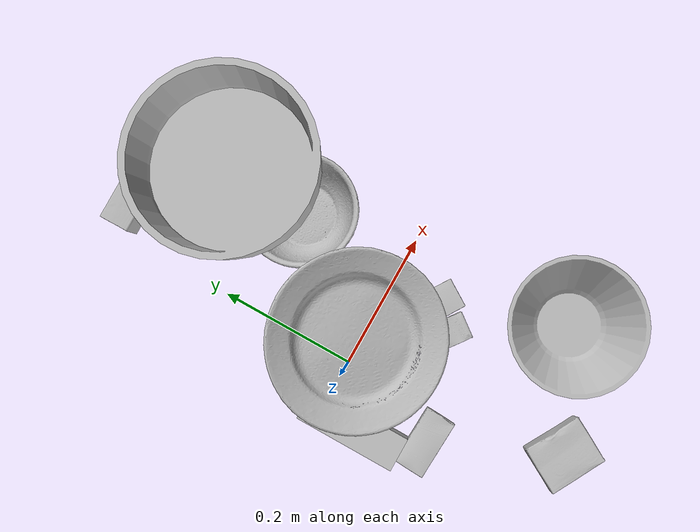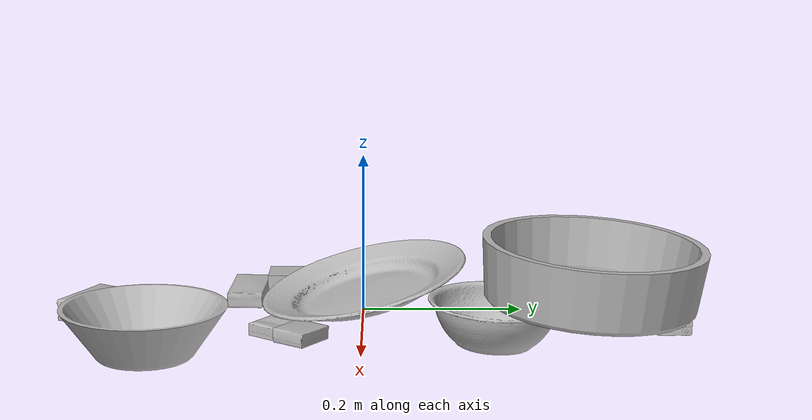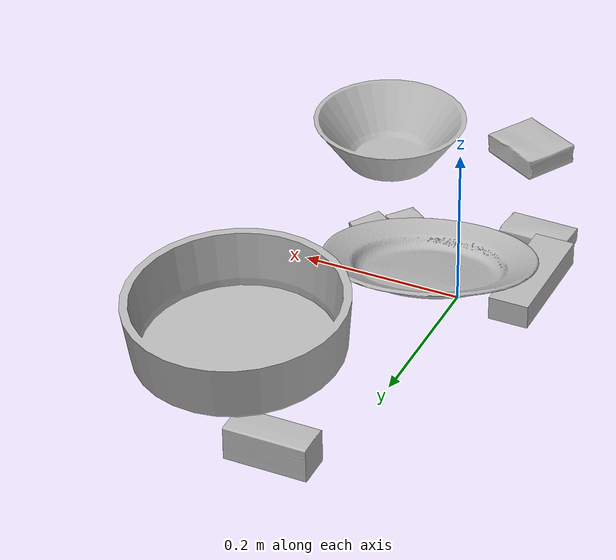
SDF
<sdf version="1.4">
  <world name="default">
    <light name="light1" type="point">
      <pose>0 0 1 0 0 0</pose>
      <diffuse>3 3 3 1</diffuse>
      <specular>3 3 3 1</specular>
    </light>
    <light name="light2" type="point">
      <pose>0 0.5 2 0 0 0</pose>
      <diffuse>1 1 1 1</diffuse>
      <specular>1 1 1 1</specular>
    </light>
    <light name="light3" type="point">
      <pose>0 0.5 2 0 0 0</pose>
      <diffuse>3 3 3 1</diffuse>
      <specular>3 3 3 1</specular>
    </light>
    <scene>
      <ambient>0.7 0.7 0.7</ambient>
    </scene>
    <model name="box1">
      <link name="link_box1">
        <collision name="default">
          <geometry>
            <mesh>
              <uri>model://jenga/collision_meshes/collision.obj</uri>
              <scale>1.0 1.0 1.0</scale>
            </mesh>
          </geometry>
          <surface>
            <friction>
              <ode>
                <mu>0.5</mu>
                <mu2>0.5</mu2>
              </ode>
            </friction>
          <contact>
        <ode>
            <max_vel>0</max_vel>
            <min_depth>0.0001</min_depth>
            <kp>1e8</kp>
        </ode>
    </contact></surface>
        </collision>
        <visual name="default">
          <geometry>
            <mesh>
              <uri>model://jenga/visual_meshes/visual.dae</uri>
              <scale>1.0 1.0 1.0</scale>
            </mesh>
          </geometry>
        </visual>
        <inertial>
          <mass>0.24226053059101105</mass>
          <pose>-2.502855807051674e-07 -0.0001025000965455547 -4.092339804628864e-05 0.0 -7.34215461761844e-07 0.0</pose>
          <inertia>
            <ixx>6.703936e-05</ixx>
            <iyy>0.0004542569</iyy>
            <izz>0.00048495785</izz>
            <ixy>0</ixy>
            <ixz>0</ixz>
            <iyz>0</iyz>
          </inertia>
        </inertial>
      </link>
      <pose>-0.07540085911750793 -0.05062822625041008 0.015000104904174805 1.0753480902674894e-05 6.877299551255808e-07 1.5708369719491067</pose>
    </model>
    <model name="box11">
      <link name="link_box11">
        <collision name="default">
          <geometry>
            <mesh>
              <uri>model://sugar_box/collision_meshes/collision.obj</uri>
              <scale>0.5 0.5 0.5</scale>
            </mesh>
          </geometry>
          <surface>
            <friction>
              <ode>
                <mu>0.5</mu>
                <mu2>0.5</mu2>
              </ode>
            </friction>
          <contact>
        <ode>
            <max_vel>0</max_vel>
            <min_depth>0.0001</min_depth>
            <kp>1e8</kp>
        </ode>
    </contact></surface>
        </collision>
        <visual name="default">
          <geometry>
            <mesh>
              <uri>model://sugar_box/visual_meshes/visual.dae</uri>
              <scale>0.5 0.5 0.5</scale>
            </mesh>
          </geometry>
        </visual>
        <inertial>
          <mass>0.06204606965184212</mass>
          <pose>0.0005171863595023751 1.9245549992774613e-05 -0.00018182402709499002 -0.0004046263588767038 0.0010506634057764815 0.0026153785560837986</pose>
          <inertia>
            <ixx>1.2924152e-05</ixx>
            <iyy>4.1773517e-05</iyy>
            <izz>5.0007893e-05</izz>
            <ixy>0</ixy>
            <ixz>0</ixz>
            <iyz>0</iyz>
          </inertia>
        </inertial>
      </link>
      <pose>-0.04391661286354065 -0.14998964965343475 0.011399311013519764 0.0007754136362805193 -0.0234325570775334 3.082054962614657</pose>
    </model>
    <model name="box2">
      <link name="link_box2">
        <collision name="default">
          <geometry>
            <mesh>
              <uri>model://gelatin_box/collision_meshes/collision.obj</uri>
              <scale>1.0 1.0 1.0</scale>
            </mesh>
          </geometry>
          <surface>
            <friction>
              <ode>
                <mu>0.5</mu>
                <mu2>0.5</mu2>
              </ode>
            </friction>
          <contact>
        <ode>
            <max_vel>0</max_vel>
            <min_depth>0.0001</min_depth>
            <kp>1e8</kp>
        </ode>
    </contact></surface>
        </collision>
        <visual name="default">
          <geometry>
            <mesh>
              <uri>model://gelatin_box/visual_meshes/visual.dae</uri>
              <scale>1.0 1.0 1.0</scale>
            </mesh>
          </geometry>
        </visual>
        <inertial>
          <mass>0.13706544041633606</mass>
          <pose>0.000431961816502735 0.00011156871187267825 -0.0003640321083366871 -0.0010503719975702072 -0.0047558196187974565 0.01644056506069309</pose>
          <inertia>
            <ixx>9.675702e-05</ixx>
            <iyy>6.911303e-05</iyy>
            <izz>0.00014728573</izz>
            <ixy>0</ixy>
            <ixz>0</ixz>
            <iyz>0</iyz>
          </inertia>
        </inertial>
      </link>
      <pose>0.03783457353711128 -0.32910433411598206 0.015168312005698681 0.00559734629006802 -0.007304452392850309 1.0560828539906535</pose>
    </model>
    <model name="box21">
      <link name="link_box21">
        <collision name="default">
          <geometry>
            <mesh>
              <uri>model://pudding_box/collision_meshes/collision.obj</uri>
              <scale>0.5 0.5 0.5</scale>
            </mesh>
          </geometry>
          <surface>
            <friction>
              <ode>
                <mu>0.5</mu>
                <mu2>0.5</mu2>
              </ode>
            </friction>
          <contact>
        <ode>
            <max_vel>0</max_vel>
            <min_depth>0.0001</min_depth>
            <kp>1e8</kp>
        </ode>
    </contact></surface>
        </collision>
        <visual name="default">
          <geometry>
            <mesh>
              <uri>model://pudding_box/visual_meshes/visual.dae</uri>
              <scale>0.5 0.5 0.5</scale>
            </mesh>
          </geometry>
        </visual>
        <inertial>
          <mass>0.041178666055202484</mass>
          <pose>0.00024474109522998333 0.00040339428232982755 -0.00025944141088984907 0.005213101335872514 -0.006603799630434185 0.020079819569992066</pose>
          <inertia>
            <ixx>1.163759e-05</ixx>
            <iyy>7.8298535e-06</iyy>
            <izz>1.7185945e-05</izz>
            <ixy>0</ixy>
            <ixz>0</ixz>
            <iyz>0</iyz>
          </inertia>
        </inertial>
      </link>
      <pose>0.1406206339597702 -0.07273726165294647 0.009862903505563736 0.02234877333094037 -0.011391537425467824 -2.14141254302602</pose>
    </model>
    <model name="box3">
      <link name="link_box3">
        <collision name="default">
          <geometry>
            <mesh>
              <uri>model://cracker_box/collision_meshes/collision.obj</uri>
              <scale>0.25 0.25 0.25</scale>
            </mesh>
          </geometry>
          <surface>
            <friction>
              <ode>
                <mu>0.5</mu>
                <mu2>0.5</mu2>
              </ode>
            </friction>
          <contact>
        <ode>
            <max_vel>0</max_vel>
            <min_depth>0.0001</min_depth>
            <kp>1e8</kp>
        </ode>
    </contact></surface>
        </collision>
        <visual name="default">
          <geometry>
            <mesh>
              <uri>model://cracker_box/visual_meshes/visual.dae</uri>
              <scale>0.25 0.25 0.25</scale>
            </mesh>
          </geometry>
        </visual>
        <inertial>
          <mass>0.02017100155353546</mass>
          <pose>0.00023660367878619581 6.358561222441494e-05 -0.00042573839891701937 -0.0003162077973682912 -0.011106487737506417 0.0025467945369474112</pose>
          <inertia>
            <ixx>3.2066264e-06</ixx>
            <iyy>5.2947703e-06</iyy>
            <izz>7.556123e-06</izz>
            <ixy>0</ixy>
            <ixz>0</ixz>
            <iyz>0</iyz>
          </inertia>
        </inertial>
      </link>
      <pose>0.10928746312856674 -0.10555210709571838 0.009120454080402851 -0.011788176280132054 -0.0073670328800018465 2.4963865603975943</pose>
    </model>
    <model name="box31">
      <link name="link_box31">
        <collision name="default">
          <geometry>
            <mesh>
              <uri>model://wood_block/collision_meshes/collision.obj</uri>
              <scale>0.5 0.5 0.5</scale>
            </mesh>
          </geometry>
          <surface>
            <friction>
              <ode>
                <mu>0.5</mu>
                <mu2>0.5</mu2>
              </ode>
            </friction>
          <contact>
        <ode>
            <max_vel>0</max_vel>
            <min_depth>0.0001</min_depth>
            <kp>1e8</kp>
        </ode>
    </contact></surface>
        </collision>
        <visual name="default">
          <geometry>
            <mesh>
              <uri>model://wood_block/visual_meshes/visual.dae</uri>
              <scale>0.5 0.5 0.5</scale>
            </mesh>
          </geometry>
        </visual>
        <inertial>
          <mass>0.1962708830833435</mass>
          <pose>-2.9066577553749084e-06 -0.000285404734313488 0.00013204291462898254 -0.05220969561834339 -0.0051926963065425085 -0.006861379449261536</pose>
          <inertia>
            <ixx>6.566003e-05</ixx>
            <iyy>0.00020742005</iyy>
            <izz>0.00020664421</izz>
            <ixy>0</ixy>
            <ixz>0</ixz>
            <iyz>0</iyz>
          </inertia>
        </inertial>
      </link>
      <pose>0.062417469918727875 0.3782561421394348 0.02264292538166046 -0.003849862202700033 0.0065445568765548235 0.0032512945970781656</pose>
    </model>
    <model name="plate1">
      <link name="link_plate1">
        <collision name="default">
          <geometry>
            <mesh>
              <uri>model://plate/collision_meshes/collision.obj</uri>
              <scale>1.0 1.0 1.0</scale>
            </mesh>
          </geometry>
          <surface>
            <friction>
              <ode>
                <mu>0.5</mu>
                <mu2>0.5</mu2>
              </ode>
            </friction>
          <contact>
        <ode>
            <max_vel>0</max_vel>
            <min_depth>0.0001</min_depth>
            <kp>1e8</kp>
        </ode>
    </contact></surface>
        </collision>
        <visual name="default">
          <geometry>
            <mesh>
              <uri>model://plate/visual_meshes/visual.dae</uri>
              <scale>1.0 1.0 1.0</scale>
            </mesh>
          </geometry>
        </visual>
        <inertial>
          <mass>0.17345036566257477</mass>
          <pose>-0.0006044625188224018 0.00027825802681036294 -0.0010561991948634386 0.0022187574415082918 -0.0032254973035065115 0.4526175972404713</pose>
          <inertia>
            <ixx>0.00081140426</ixx>
            <iyy>0.0008036436</iyy>
            <izz>0.0015869853</izz>
            <ixy>0</ixy>
            <ixz>0</ixz>
            <iyz>0</iyz>
          </inertia>
        </inertial>
      </link>
      <pose>0.03561042994260788 0.0026525678113102913 0.03955534100532532 -0.20090591063169663 -0.12950949279129675 2.812323597533873</pose>
    </model>
    <model name="bowl1">
      <link name="link_bowl1">
        <collision name="default">
          <geometry>
            <mesh>
              <uri>model://bowl/collision_meshes/collision.obj</uri>
              <scale>1.0 1.0 1.0</scale>
            </mesh>
          </geometry>
          <surface>
            <friction>
              <ode>
                <mu>0.5</mu>
                <mu2>0.5</mu2>
              </ode>
            </friction>
          <contact>
        <ode>
            <max_vel>0</max_vel>
            <min_depth>0.0001</min_depth>
            <kp>1e8</kp>
        </ode>
    </contact></surface>
        </collision>
        <visual name="default">
          <geometry>
            <mesh>
              <uri>model://bowl/visual_meshes/visual.dae</uri>
              <scale>1.0 1.0 1.0</scale>
            </mesh>
          </geometry>
        </visual>
        <inertial>
          <mass>0.11633910983800888</mass>
          <pose>0.00020445004338398576 -0.0010302083101123571 -0.0008042659610509872 -0.01576420252076368 0.01454664289610389 0.7140315541596068</pose>
          <inertia>
            <ixx>0.0002672402</ixx>
            <iyy>0.000261269</iyy>
            <izz>0.00044958986</izz>
            <ixy>0</ixy>
            <ixz>0</ixz>
            <iyz>0</iyz>
          </inertia>
        </inertial>
      </link>
      <pose>0.15454863011837006 0.15843650698661804 0.02975812368094921 0.028838531284600677 -0.03942705139585861 -2.456245941595895</pose>
    </model>
    <model name="plate2">
      <link name="link_plate2">
        <collision name="default">
          <geometry>
            <mesh>
              <uri>model://pan_tefal/collision_meshes/collision.obj</uri>
              <scale>1.0 1.0 1.0</scale>
            </mesh>
          </geometry>
          <surface>
            <friction>
              <ode>
                <mu>0.5</mu>
                <mu2>0.5</mu2>
              </ode>
            </friction>
          <contact>
        <ode>
            <max_vel>0</max_vel>
            <min_depth>0.0001</min_depth>
            <kp>1e8</kp>
        </ode>
    </contact></surface>
        </collision>
        <visual name="default">
          <geometry>
            <mesh>
              <uri>model://pan_tefal/visual_meshes/visual.dae</uri>
              <scale>1.0 1.0 1.0</scale>
            </mesh>
          </geometry>
        </visual>
        <inertial>
          <mass>0.6251956820487976</mass>
          <pose>-0.00018002417345996946 3.279016891610809e-05 -0.00851493515074253 0.0008190253681579672 -0.00033013925853852665 -0.331857454583129</pose>
          <inertia>
            <ixx>0.004315697</ixx>
            <iyy>0.00434352</iyy>
            <izz>0.007944365</izz>
            <ixy>0</ixy>
            <ixz>0</ixz>
            <iyz>0</iyz>
          </inertia>
        </inertial>
      </link>
      <pose>0.15750332176685333 0.2711986303329468 0.08942357450723648 0.05114605502962336 0.03789225744773913 2.2346149707641323</pose>
    </model>
    <model name="bowl2">
      <link name="link_bowl2">
        <collision name="default">
          <geometry>
            <mesh>
              <uri>model://bowl_a/collision_meshes/collision.obj</uri>
              <scale>1.0 1.0 1.0</scale>
            </mesh>
          </geometry>
          <surface>
            <friction>
              <ode>
                <mu>0.5</mu>
                <mu2>0.5</mu2>
              </ode>
            </friction>
          <contact>
        <ode>
            <max_vel>0</max_vel>
            <min_depth>0.0001</min_depth>
            <kp>1e8</kp>
        </ode>
    </contact></surface>
        </collision>
        <visual name="default">
          <geometry>
            <mesh>
              <uri>model://bowl_a/visual_meshes/visual.dae</uri>
              <scale>1.0 1.0 1.0</scale>
            </mesh>
          </geometry>
        </visual>
        <inertial>
          <mass>0.3434441387653351</mass>
          <pose>0.0002786742115858942 4.731103399535641e-05 -0.0013765294570475817 -0.000980532155977885 -0.0010938290454026757 -0.191241060811112</pose>
          <inertia>
            <ixx>0.0009778013</ixx>
            <iyy>0.0009838042</iyy>
            <izz>0.0017390571</izz>
            <ixy>0</ixy>
            <ixz>0</ixz>
            <iyz>0</iyz>
          </inertia>
        </inertial>
      </link>
      <pose>0.20115935802459717 -0.2507422864437103 0.03038301132619381 -9.230949053071359e-08 1.5112033163127508e-07 -1.4970952337866037</pose>
    </model>
  <physics type="ode">
      <max_contacts>50</max_contacts>
      <ode>
        <solver>
          <type>quick</type>
          <iters>75</iters>
        </solver>
        <constraints>
          <contact_max_correcting_vel>0</contact_max_correcting_vel>
          <contact_surface_layer>0</contact_surface_layer>
        </constraints>
      </ode>
    </physics></world>
</sdf>
